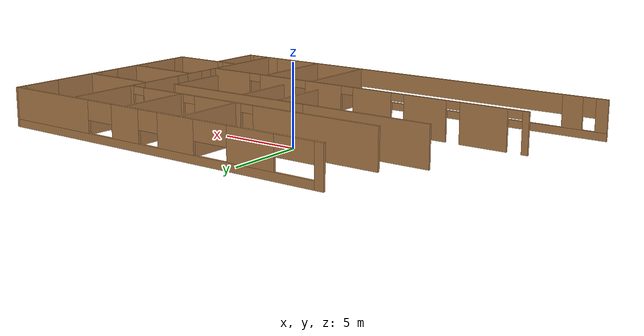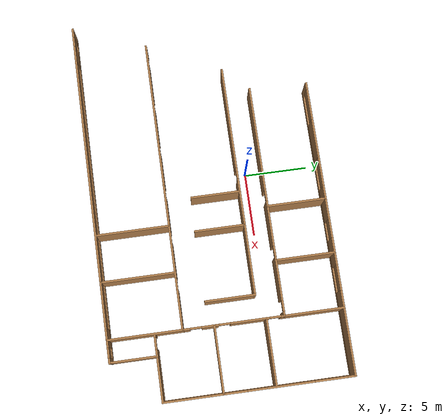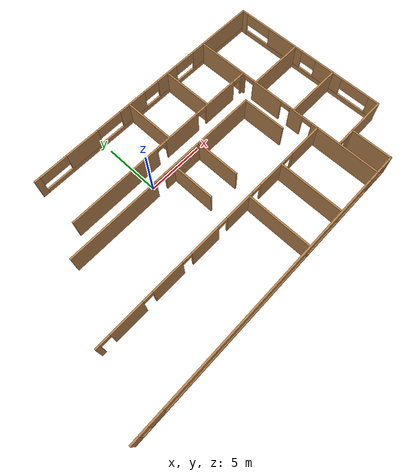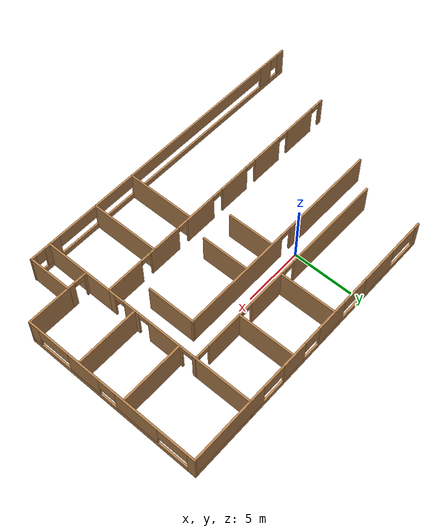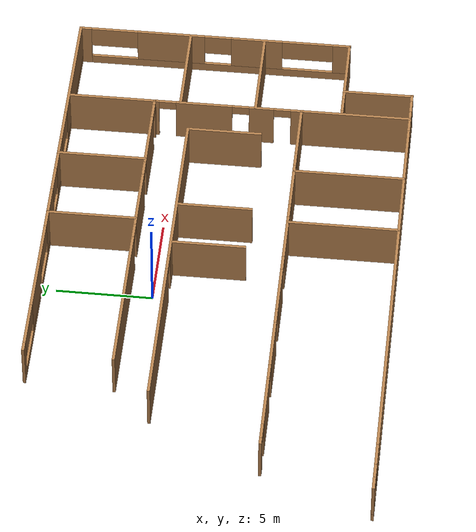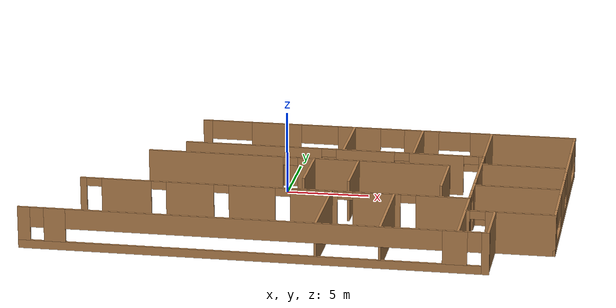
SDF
<sdf version="1.5">
 <model name="Office">
  <link name="Wall_19">
   <pose>2.70021 1.20875 0 0 -0 0</pose>
   <visual name="Wall_19_Visual_0">
    <pose>-5.01824 0 1.25 0 -0 0</pose>
    <geometry><box><size>8.46352 0.15 2.5</size></box></geometry>
    <material>
     <script><uri>file://media/materials/scripts/gazebo.material</uri><name>Gazebo/Wood</name></script>
     <ambient>1 1 1 1</ambient>
    </material>
   </visual>
   <collision name="Wall_19_Collision_0">
    <geometry><box><size>8.46352 0.15 2.5</size></box></geometry>
    <pose>-5.01824 0 1.25 0 -0 0</pose>
   </collision>
   <visual name="Wall_19_Visual_1">
    <pose>1.91202 0 1.25 0 -0 0</pose>
    <geometry><box><size>3.59698 0.15 2.5</size></box></geometry>
    <material>
     <script><uri>file://media/materials/scripts/gazebo.material</uri><name>Gazebo/Wood</name></script>
     <ambient>1 1 1 1</ambient>
    </material>
   </visual>
   <collision name="Wall_19_Collision_1">
    <geometry><box><size>3.59698 0.15 2.5</size></box></geometry>
    <pose>1.91202 0 1.25 0 -0 0</pose>
   </collision>
   <visual name="Wall_19_Visual_2">
    <pose>6.28533 0 1.25 0 -0 0</pose>
    <geometry><box><size>3.34965 0.15 2.5</size></box></geometry>
    <material>
     <script><uri>file://media/materials/scripts/gazebo.material</uri><name>Gazebo/Wood</name></script>
     <ambient>1 1 1 1</ambient>
    </material>
   </visual>
   <collision name="Wall_19_Collision_2">
    <geometry><box><size>3.34965 0.15 2.5</size></box></geometry>
    <pose>6.28533 0 1.25 0 -0 0</pose>
   </collision>
   <visual name="Wall_19_Visual_3">
    <pose>9.05508 0 1.25 0 -0 0</pose>
    <geometry><box><size>0.389848 0.15 2.5</size></box></geometry>
    <material>
     <script><uri>file://media/materials/scripts/gazebo.material</uri><name>Gazebo/Wood</name></script>
     <ambient>1 1 1 1</ambient>
    </material>
   </visual>
   <collision name="Wall_19_Collision_3">
    <geometry><box><size>0.389848 0.15 2.5</size></box></geometry>
    <pose>9.05508 0 1.25 0 -0 0</pose>
   </collision>
   <visual name="Wall_19_Visual_4">
    <pose>-0.336476 0 2.25 0 -0 0</pose>
    <geometry><box><size>0.9 0.15 0.5</size></box></geometry>
    <material>
     <script><uri>file://media/materials/scripts/gazebo.material</uri><name>Gazebo/Wood</name></script>
     <ambient>1 1 1 1</ambient>
    </material>
   </visual>
   <collision name="Wall_19_Collision_4">
    <geometry><box><size>0.9 0.15 0.5</size></box></geometry>
    <pose>-0.336476 0 2.25 0 -0 0</pose>
   </collision>
   <visual name="Wall_19_Visual_5">
    <pose>4.1605 0 2.25 0 -0 0</pose>
    <geometry><box><size>0.9 0.15 0.5</size></box></geometry>
    <material>
     <script><uri>file://media/materials/scripts/gazebo.material</uri><name>Gazebo/Wood</name></script>
     <ambient>1 1 1 1</ambient>
    </material>
   </visual>
   <collision name="Wall_19_Collision_5">
    <geometry><box><size>0.9 0.15 0.5</size></box></geometry>
    <pose>4.1605 0 2.25 0 -0 0</pose>
   </collision>
   <visual name="Wall_19_Visual_6">
    <pose>8.41015 0 2.25 0 -0 0</pose>
    <geometry><box><size>0.9 0.15 0.5</size></box></geometry>
    <material>
     <script><uri>file://media/materials/scripts/gazebo.material</uri><name>Gazebo/Wood</name></script>
     <ambient>1 1 1 1</ambient>
    </material>
   </visual>
   <collision name="Wall_19_Collision_6">
    <geometry><box><size>0.9 0.15 0.5</size></box></geometry>
    <pose>8.41015 0 2.25 0 -0 0</pose>
   </collision>
  </link>
  <link name="Wall_2">
   <pose>5.35021 5.80875 0 0 -0 0</pose>
   <visual name="Wall_2_Visual_0">
    <pose>-11.4699 0 1.25 0 -0 0</pose>
    <geometry><box><size>0.560252 0.15 2.5</size></box></geometry>
    <material>
     <script><uri>file://media/materials/scripts/gazebo.material</uri><name>Gazebo/Wood</name></script>
     <ambient>1 1 1 1</ambient>
    </material>
   </visual>
   <collision name="Wall_2_Collision_0">
    <geometry><box><size>0.560252 0.15 2.5</size></box></geometry>
    <pose>-11.4699 0 1.25 0 -0 0</pose>
   </collision>
   <visual name="Wall_2_Visual_1">
    <pose>0.280126 0 0.25 0 -0 0</pose>
    <geometry><box><size>22.9397 0.15 0.5</size></box></geometry>
    <material>
     <script><uri>file://media/materials/scripts/gazebo.material</uri><name>Gazebo/Wood</name></script>
     <ambient>1 1 1 1</ambient>
    </material>
   </visual>
   <collision name="Wall_2_Collision_1">
    <geometry><box><size>22.9397 0.15 0.5</size></box></geometry>
    <pose>0.280126 0 0.25 0 -0 0</pose>
   </collision>
   <visual name="Wall_2_Visual_2">
    <pose>-7.05725 0 1.5 0 -0 0</pose>
    <geometry><box><size>3.15734 0.15 2</size></box></geometry>
    <material>
     <script><uri>file://media/materials/scripts/gazebo.material</uri><name>Gazebo/Wood</name></script>
     <ambient>1 1 1 1</ambient>
    </material>
   </visual>
   <collision name="Wall_2_Collision_2">
    <geometry><box><size>3.15734 0.15 2</size></box></geometry>
    <pose>-7.05725 0 1.5 0 -0 0</pose>
   </collision>
   <visual name="Wall_2_Visual_3">
    <pose>-1.78454 0 1.5 0 -0 0</pose>
    <geometry><box><size>2.68516 0.15 2</size></box></geometry>
    <material>
     <script><uri>file://media/materials/scripts/gazebo.material</uri><name>Gazebo/Wood</name></script>
     <ambient>1 1 1 1</ambient>
    </material>
   </visual>
   <collision name="Wall_2_Collision_3">
    <geometry><box><size>2.68516 0.15 2</size></box></geometry>
    <pose>-1.78454 0 1.5 0 -0 0</pose>
   </collision>
   <visual name="Wall_2_Visual_4">
    <pose>2.13907 0 1.5 0 -0 0</pose>
    <geometry><box><size>2.16801 0.15 2</size></box></geometry>
    <material>
     <script><uri>file://media/materials/scripts/gazebo.material</uri><name>Gazebo/Wood</name></script>
     <ambient>1 1 1 1</ambient>
    </material>
   </visual>
   <collision name="Wall_2_Collision_4">
    <geometry><box><size>2.16801 0.15 2</size></box></geometry>
    <pose>2.13907 0 1.5 0 -0 0</pose>
   </collision>
   <visual name="Wall_2_Visual_5">
    <pose>8.47114 0 1.5 0 -0 0</pose>
    <geometry><box><size>6.55771 0.15 2</size></box></geometry>
    <material>
     <script><uri>file://media/materials/scripts/gazebo.material</uri><name>Gazebo/Wood</name></script>
     <ambient>1 1 1 1</ambient>
    </material>
   </visual>
   <collision name="Wall_2_Collision_5">
    <geometry><box><size>6.55771 0.15 2</size></box></geometry>
    <pose>8.47114 0 1.5 0 -0 0</pose>
   </collision>
   <visual name="Wall_2_Visual_6">
    <pose>-9.91284 0 1.9 0 -0 0</pose>
    <geometry><box><size>2.55382 0.15 1.2</size></box></geometry>
    <material>
     <script><uri>file://media/materials/scripts/gazebo.material</uri><name>Gazebo/Wood</name></script>
     <ambient>1 1 1 1</ambient>
    </material>
   </visual>
   <collision name="Wall_2_Collision_6">
    <geometry><box><size>2.55382 0.15 1.2</size></box></geometry>
    <pose>-9.91284 0 1.9 0 -0 0</pose>
   </collision>
   <visual name="Wall_2_Visual_7">
    <pose>-4.30285 0 1.9 0 -0 0</pose>
    <geometry><box><size>2.35146 0.15 1.2</size></box></geometry>
    <material>
     <script><uri>file://media/materials/scripts/gazebo.material</uri><name>Gazebo/Wood</name></script>
     <ambient>1 1 1 1</ambient>
    </material>
   </visual>
   <collision name="Wall_2_Collision_7">
    <geometry><box><size>2.35146 0.15 1.2</size></box></geometry>
    <pose>-4.30285 0 1.9 0 -0 0</pose>
   </collision>
   <visual name="Wall_2_Visual_8">
    <pose>0.306552 0 1.9 0 -0 0</pose>
    <geometry><box><size>1.49703 0.15 1.2</size></box></geometry>
    <material>
     <script><uri>file://media/materials/scripts/gazebo.material</uri><name>Gazebo/Wood</name></script>
     <ambient>1 1 1 1</ambient>
    </material>
   </visual>
   <collision name="Wall_2_Collision_8">
    <geometry><box><size>1.49703 0.15 1.2</size></box></geometry>
    <pose>0.306552 0 1.9 0 -0 0</pose>
   </collision>
   <visual name="Wall_2_Visual_9">
    <pose>4.20768 0 1.9 0 -0 0</pose>
    <geometry><box><size>1.96921 0.15 1.2</size></box></geometry>
    <material>
     <script><uri>file://media/materials/scripts/gazebo.material</uri><name>Gazebo/Wood</name></script>
     <ambient>1 1 1 1</ambient>
    </material>
   </visual>
   <collision name="Wall_2_Collision_9">
    <geometry><box><size>1.96921 0.15 1.2</size></box></geometry>
    <pose>4.20768 0 1.9 0 -0 0</pose>
   </collision>
  </link>
  <link name="Wall_20">
   <pose>11.8765 -2.716 0 0 0 -1.57047</pose>
   <visual name="Wall_20_Visual_0">
    <pose>-3.83753 0 1.25 0 -0 0</pose>
    <geometry><box><size>0.324938 0.15 2.5</size></box></geometry>
    <material>
     <script><uri>file://media/materials/scripts/gazebo.material</uri><name>Gazebo/Wood</name></script>
     <ambient>1 1 1 1</ambient>
    </material>
   </visual>
   <collision name="Wall_20_Collision_0">
    <geometry><box><size>0.324938 0.15 2.5</size></box></geometry>
    <pose>-3.83753 0 1.25 0 -0 0</pose>
   </collision>
   <visual name="Wall_20_Visual_1">
    <pose>-1.26988 0 1.25 0 -0 0</pose>
    <geometry><box><size>3.01037 0.15 2.5</size></box></geometry>
    <material>
     <script><uri>file://media/materials/scripts/gazebo.material</uri><name>Gazebo/Wood</name></script>
     <ambient>1 1 1 1</ambient>
    </material>
   </visual>
   <collision name="Wall_20_Collision_1">
    <geometry><box><size>3.01037 0.15 2.5</size></box></geometry>
    <pose>-1.26988 0 1.25 0 -0 0</pose>
   </collision>
   <visual name="Wall_20_Visual_2">
    <pose>1.79718 0 1.25 0 -0 0</pose>
    <geometry><box><size>1.32373 0.15 2.5</size></box></geometry>
    <material>
     <script><uri>file://media/materials/scripts/gazebo.material</uri><name>Gazebo/Wood</name></script>
     <ambient>1 1 1 1</ambient>
    </material>
   </visual>
   <collision name="Wall_20_Collision_2">
    <geometry><box><size>1.32373 0.15 2.5</size></box></geometry>
    <pose>1.79718 0 1.25 0 -0 0</pose>
   </collision>
   <visual name="Wall_20_Visual_3">
    <pose>3.67952 0 1.25 0 -0 0</pose>
    <geometry><box><size>0.640957 0.15 2.5</size></box></geometry>
    <material>
     <script><uri>file://media/materials/scripts/gazebo.material</uri><name>Gazebo/Wood</name></script>
     <ambient>1 1 1 1</ambient>
    </material>
   </visual>
   <collision name="Wall_20_Collision_3">
    <geometry><box><size>0.640957 0.15 2.5</size></box></geometry>
    <pose>3.67952 0 1.25 0 -0 0</pose>
   </collision>
   <visual name="Wall_20_Visual_4">
    <pose>-3.22506 0 2.25 0 -0 0</pose>
    <geometry><box><size>0.9 0.15 0.5</size></box></geometry>
    <material>
     <script><uri>file://media/materials/scripts/gazebo.material</uri><name>Gazebo/Wood</name></script>
     <ambient>1 1 1 1</ambient>
    </material>
   </visual>
   <collision name="Wall_20_Collision_4">
    <geometry><box><size>0.9 0.15 0.5</size></box></geometry>
    <pose>-3.22506 0 2.25 0 -0 0</pose>
   </collision>
   <visual name="Wall_20_Visual_5">
    <pose>0.685311 0 2.25 0 -0 0</pose>
    <geometry><box><size>0.9 0.15 0.5</size></box></geometry>
    <material>
     <script><uri>file://media/materials/scripts/gazebo.material</uri><name>Gazebo/Wood</name></script>
     <ambient>1 1 1 1</ambient>
    </material>
   </visual>
   <collision name="Wall_20_Collision_5">
    <geometry><box><size>0.9 0.15 0.5</size></box></geometry>
    <pose>0.685311 0 2.25 0 -0 0</pose>
   </collision>
   <visual name="Wall_20_Visual_6">
    <pose>2.90904 0 2.25 0 -0 0</pose>
    <geometry><box><size>0.9 0.15 0.5</size></box></geometry>
    <material>
     <script><uri>file://media/materials/scripts/gazebo.material</uri><name>Gazebo/Wood</name></script>
     <ambient>1 1 1 1</ambient>
    </material>
   </visual>
   <collision name="Wall_20_Collision_6">
    <geometry><box><size>0.9 0.15 0.5</size></box></geometry>
    <pose>2.90904 0 2.25 0 -0 0</pose>
   </collision>
  </link>
  <link name="Wall_21">
   <pose>0.327792 -6.64075 0 0 -0 3.14159</pose>
   <visual name="Wall_21_Visual_0">
    <pose>-10.0278 0 1.25 0 -0 0</pose>
    <geometry><box><size>3.19439 0.15 2.5</size></box></geometry>
    <material>
     <script><uri>file://media/materials/scripts/gazebo.material</uri><name>Gazebo/Wood</name></script>
     <ambient>1 1 1 1</ambient>
    </material>
   </visual>
   <collision name="Wall_21_Collision_0">
    <geometry><box><size>3.19439 0.15 2.5</size></box></geometry>
    <pose>-10.0278 0 1.25 0 -0 0</pose>
   </collision>
   <visual name="Wall_21_Visual_1">
    <pose>-6.12294 0 1.25 0 -0 0</pose>
    <geometry><box><size>2.81533 0.15 2.5</size></box></geometry>
    <material>
     <script><uri>file://media/materials/scripts/gazebo.material</uri><name>Gazebo/Wood</name></script>
     <ambient>1 1 1 1</ambient>
    </material>
   </visual>
   <collision name="Wall_21_Collision_1">
    <geometry><box><size>2.81533 0.15 2.5</size></box></geometry>
    <pose>-6.12294 0 1.25 0 -0 0</pose>
   </collision>
   <visual name="Wall_21_Visual_2">
    <pose>-2.41333 0 1.25 0 -0 0</pose>
    <geometry><box><size>2.80389 0.15 2.5</size></box></geometry>
    <material>
     <script><uri>file://media/materials/scripts/gazebo.material</uri><name>Gazebo/Wood</name></script>
     <ambient>1 1 1 1</ambient>
    </material>
   </visual>
   <collision name="Wall_21_Collision_2">
    <geometry><box><size>2.80389 0.15 2.5</size></box></geometry>
    <pose>-2.41333 0 1.25 0 -0 0</pose>
   </collision>
   <visual name="Wall_21_Visual_3">
    <pose>1.27186 0 1.25 0 -0 0</pose>
    <geometry><box><size>2.76648 0.15 2.5</size></box></geometry>
    <material>
     <script><uri>file://media/materials/scripts/gazebo.material</uri><name>Gazebo/Wood</name></script>
     <ambient>1 1 1 1</ambient>
    </material>
   </visual>
   <collision name="Wall_21_Collision_3">
    <geometry><box><size>2.76648 0.15 2.5</size></box></geometry>
    <pose>1.27186 0 1.25 0 -0 0</pose>
   </collision>
   <visual name="Wall_21_Visual_4">
    <pose>4.99008 0 1.25 0 -0 0</pose>
    <geometry><box><size>2.86997 0.15 2.5</size></box></geometry>
    <material>
     <script><uri>file://media/materials/scripts/gazebo.material</uri><name>Gazebo/Wood</name></script>
     <ambient>1 1 1 1</ambient>
    </material>
   </visual>
   <collision name="Wall_21_Collision_4">
    <geometry><box><size>2.86997 0.15 2.5</size></box></geometry>
    <pose>4.99008 0 1.25 0 -0 0</pose>
   </collision>
   <visual name="Wall_21_Visual_5">
    <pose>8.82658 0 1.25 0 -0 0</pose>
    <geometry><box><size>3.00303 0.15 2.5</size></box></geometry>
    <material>
     <script><uri>file://media/materials/scripts/gazebo.material</uri><name>Gazebo/Wood</name></script>
     <ambient>1 1 1 1</ambient>
    </material>
   </visual>
   <collision name="Wall_21_Collision_5">
    <geometry><box><size>3.00303 0.15 2.5</size></box></geometry>
    <pose>8.82658 0 1.25 0 -0 0</pose>
   </collision>
   <visual name="Wall_21_Visual_6">
    <pose>11.4265 0 1.25 0 -0 0</pose>
    <geometry><box><size>0.396909 0.15 2.5</size></box></geometry>
    <material>
     <script><uri>file://media/materials/scripts/gazebo.material</uri><name>Gazebo/Wood</name></script>
     <ambient>1 1 1 1</ambient>
    </material>
   </visual>
   <collision name="Wall_21_Collision_6">
    <geometry><box><size>0.396909 0.15 2.5</size></box></geometry>
    <pose>11.4265 0 1.25 0 -0 0</pose>
   </collision>
   <visual name="Wall_21_Visual_7">
    <pose>-7.98061 0 2.25 0 -0 0</pose>
    <geometry><box><size>0.9 0.15 0.5</size></box></geometry>
    <material>
     <script><uri>file://media/materials/scripts/gazebo.material</uri><name>Gazebo/Wood</name></script>
     <ambient>1 1 1 1</ambient>
    </material>
   </visual>
   <collision name="Wall_21_Collision_7">
    <geometry><box><size>0.9 0.15 0.5</size></box></geometry>
    <pose>-7.98061 0 2.25 0 -0 0</pose>
   </collision>
   <visual name="Wall_21_Visual_8">
    <pose>-4.26528 0 2.25 0 -0 0</pose>
    <geometry><box><size>0.9 0.15 0.5</size></box></geometry>
    <material>
     <script><uri>file://media/materials/scripts/gazebo.material</uri><name>Gazebo/Wood</name></script>
     <ambient>1 1 1 1</ambient>
    </material>
   </visual>
   <collision name="Wall_21_Collision_8">
    <geometry><box><size>0.9 0.15 0.5</size></box></geometry>
    <pose>-4.26528 0 2.25 0 -0 0</pose>
   </collision>
   <visual name="Wall_21_Visual_9">
    <pose>-0.561382 0 2.25 0 -0 0</pose>
    <geometry><box><size>0.9 0.15 0.5</size></box></geometry>
    <material>
     <script><uri>file://media/materials/scripts/gazebo.material</uri><name>Gazebo/Wood</name></script>
     <ambient>1 1 1 1</ambient>
    </material>
   </visual>
   <collision name="Wall_21_Collision_9">
    <geometry><box><size>0.9 0.15 0.5</size></box></geometry>
    <pose>-0.561382 0 2.25 0 -0 0</pose>
   </collision>
   <visual name="Wall_21_Visual_10">
    <pose>3.1051 0 2.25 0 -0 0</pose>
    <geometry><box><size>0.9 0.15 0.5</size></box></geometry>
    <material>
     <script><uri>file://media/materials/scripts/gazebo.material</uri><name>Gazebo/Wood</name></script>
     <ambient>1 1 1 1</ambient>
    </material>
   </visual>
   <collision name="Wall_21_Collision_10">
    <geometry><box><size>0.9 0.15 0.5</size></box></geometry>
    <pose>3.1051 0 2.25 0 -0 0</pose>
   </collision>
   <visual name="Wall_21_Visual_11">
    <pose>6.87507 0 2.25 0 -0 0</pose>
    <geometry><box><size>0.9 0.15 0.5</size></box></geometry>
    <material>
     <script><uri>file://media/materials/scripts/gazebo.material</uri><name>Gazebo/Wood</name></script>
     <ambient>1 1 1 1</ambient>
    </material>
   </visual>
   <collision name="Wall_21_Collision_11">
    <geometry><box><size>0.9 0.15 0.5</size></box></geometry>
    <pose>6.87507 0 2.25 0 -0 0</pose>
   </collision>
   <visual name="Wall_21_Visual_12">
    <pose>10.7781 0 2.25 0 -0 0</pose>
    <geometry><box><size>0.9 0.15 0.5</size></box></geometry>
    <material>
     <script><uri>file://media/materials/scripts/gazebo.material</uri><name>Gazebo/Wood</name></script>
     <ambient>1 1 1 1</ambient>
    </material>
   </visual>
   <collision name="Wall_21_Collision_12">
    <geometry><box><size>0.9 0.15 0.5</size></box></geometry>
    <pose>10.7781 0 2.25 0 -0 0</pose>
   </collision>
  </link>
  <link name="Wall_26">
   <collision name="Wall_26_Collision">
    <geometry><box><size>3.75 0.15 2.5</size></box></geometry>
    <pose>0 0 1.25 0 -0 0</pose>
   </collision>
   <visual name="Wall_26_Visual">
    <pose>0 0 1.25 0 -0 0</pose>
    <geometry><box><size>3.75 0.15 2.5</size></box></geometry>
    <material>
     <script><uri>file://media/materials/scripts/gazebo.material</uri><name>Gazebo/Wood</name></script>
     <ambient>1 1 1 1</ambient>
    </material>
   </visual>
   <pose>13.5782 -10.5913 0 0 0 -1.5708</pose>
  </link>
  <link name="Wall_3">
   <pose>17.0252 -1.49125 0 0 0 -1.5708</pose>
   <visual name="Wall_3_Visual_0">
    <pose>-7.0458 0 1.25 0 -0 0</pose>
    <geometry><box><size>0.658408 0.15 2.5</size></box></geometry>
    <material>
     <script><uri>file://media/materials/scripts/gazebo.material</uri><name>Gazebo/Wood</name></script>
     <ambient>1 1 1 1</ambient>
    </material>
   </visual>
   <collision name="Wall_3_Collision_0">
    <geometry><box><size>0.658408 0.15 2.5</size></box></geometry>
    <pose>-7.0458 0 1.25 0 -0 0</pose>
   </collision>
   <visual name="Wall_3_Visual_1">
    <pose>0.329204 0 0.25 0 -0 0</pose>
    <geometry><box><size>14.0916 0.15 0.5</size></box></geometry>
    <material>
     <script><uri>file://media/materials/scripts/gazebo.material</uri><name>Gazebo/Wood</name></script>
     <ambient>1 1 1 1</ambient>
    </material>
   </visual>
   <collision name="Wall_3_Collision_1">
    <geometry><box><size>14.0916 0.15 0.5</size></box></geometry>
    <pose>0.329204 0 0.25 0 -0 0</pose>
   </collision>
   <visual name="Wall_3_Visual_2">
    <pose>-2.38173 0 1.5 0 -0 0</pose>
    <geometry><box><size>3.65201 0.15 2</size></box></geometry>
    <material>
     <script><uri>file://media/materials/scripts/gazebo.material</uri><name>Gazebo/Wood</name></script>
     <ambient>1 1 1 1</ambient>
    </material>
   </visual>
   <collision name="Wall_3_Collision_2">
    <geometry><box><size>3.65201 0.15 2</size></box></geometry>
    <pose>-2.38173 0 1.5 0 -0 0</pose>
   </collision>
   <visual name="Wall_3_Visual_3">
    <pose>2.2833 0 1.5 0 -0 0</pose>
    <geometry><box><size>2.77394 0.15 2</size></box></geometry>
    <material>
     <script><uri>file://media/materials/scripts/gazebo.material</uri><name>Gazebo/Wood</name></script>
     <ambient>1 1 1 1</ambient>
    </material>
   </visual>
   <collision name="Wall_3_Collision_3">
    <geometry><box><size>2.77394 0.15 2</size></box></geometry>
    <pose>2.2833 0 1.5 0 -0 0</pose>
   </collision>
   <visual name="Wall_3_Visual_4">
    <pose>6.89046 0 1.5 0 -0 0</pose>
    <geometry><box><size>0.969072 0.15 2</size></box></geometry>
    <material>
     <script><uri>file://media/materials/scripts/gazebo.material</uri><name>Gazebo/Wood</name></script>
     <ambient>1 1 1 1</ambient>
    </material>
   </visual>
   <collision name="Wall_3_Collision_4">
    <geometry><box><size>0.969072 0.15 2</size></box></geometry>
    <pose>6.89046 0 1.5 0 -0 0</pose>
   </collision>
   <visual name="Wall_3_Visual_5">
    <pose>-5.46217 0 1.9 0 -0 0</pose>
    <geometry><box><size>2.50885 0.15 1.2</size></box></geometry>
    <material>
     <script><uri>file://media/materials/scripts/gazebo.material</uri><name>Gazebo/Wood</name></script>
     <ambient>1 1 1 1</ambient>
    </material>
   </visual>
   <collision name="Wall_3_Collision_5">
    <geometry><box><size>2.50885 0.15 1.2</size></box></geometry>
    <pose>-5.46217 0 1.9 0 -0 0</pose>
   </collision>
   <visual name="Wall_3_Visual_6">
    <pose>0.170302 0 1.9 0 -0 0</pose>
    <geometry><box><size>1.45206 0.15 1.2</size></box></geometry>
    <material>
     <script><uri>file://media/materials/scripts/gazebo.material</uri><name>Gazebo/Wood</name></script>
     <ambient>1 1 1 1</ambient>
    </material>
   </visual>
   <collision name="Wall_3_Collision_6">
    <geometry><box><size>1.45206 0.15 1.2</size></box></geometry>
    <pose>0.170302 0 1.9 0 -0 0</pose>
   </collision>
   <visual name="Wall_3_Visual_7">
    <pose>5.0381 0 1.9 0 -0 0</pose>
    <geometry><box><size>2.73566 0.15 1.2</size></box></geometry>
    <material>
     <script><uri>file://media/materials/scripts/gazebo.material</uri><name>Gazebo/Wood</name></script>
     <ambient>1 1 1 1</ambient>
    </material>
   </visual>
   <collision name="Wall_3_Collision_7">
    <geometry><box><size>2.73566 0.15 1.2</size></box></geometry>
    <pose>5.0381 0 1.9 0 -0 0</pose>
   </collision>
  </link>
  <link name="Wall_4">
   <collision name="Wall_4_Collision">
    <geometry><box><size>3.59696 0.15 2.5</size></box></geometry>
    <pose>0 0 1.25 0 -0 0</pose>
   </collision>
   <visual name="Wall_4_Visual">
    <pose>0 0 1.25 0 -0 0</pose>
    <geometry><box><size>3.59696 0.15 2.5</size></box></geometry>
    <material>
     <script><uri>file://media/materials/scripts/gazebo.material</uri><name>Gazebo/Wood</name></script>
     <ambient>1 1 1 1</ambient>
    </material>
   </visual>
   <pose>15.3017 -8.79125 0 0 -0 3.14159</pose>
  </link>
  <link name="Wall_42">
   <collision name="Wall_42_Collision">
    <geometry><box><size>5.8 0.15 2.5</size></box></geometry>
    <pose>0 0 1.25 0 -0 0</pose>
   </collision>
   <visual name="Wall_42_Visual">
    <pose>0 0 1.25 0 -0 0</pose>
    <geometry><box><size>5.8 0.15 2.5</size></box></geometry>
    <material>
     <script><uri>file://media/materials/scripts/gazebo.material</uri><name>Gazebo/Wood</name></script>
     <ambient>1 1 1 1</ambient>
    </material>
   </visual>
   <pose>3.77279 -9.54675 0 0 0 -1.5708</pose>
  </link>
  <link name="Wall_44">
   <collision name="Wall_44_Collision">
    <geometry><box><size>5.855 0.15 2.5</size></box></geometry>
    <pose>0 0 1.25 0 -0 0</pose>
   </collision>
   <visual name="Wall_44_Visual">
    <pose>0 0 1.25 0 -0 0</pose>
    <geometry><box><size>5.855 0.15 2.5</size></box></geometry>
    <material>
     <script><uri>file://media/materials/scripts/gazebo.material</uri><name>Gazebo/Wood</name></script>
     <ambient>1 1 1 1</ambient>
    </material>
   </visual>
   <pose>7.45979 -9.51925 0 0 0 -1.5708</pose>
  </link>
  <link name="Wall_47">
   <collision name="Wall_47_Collision">
    <geometry><box><size>5.881 0.15 2.5</size></box></geometry>
    <pose>0 0 1.25 0 -0 0</pose>
   </collision>
   <visual name="Wall_47_Visual">
    <pose>0 0 1.25 0 -0 0</pose>
    <geometry><box><size>5.881 0.15 2.5</size></box></geometry>
    <material>
     <script><uri>file://media/materials/scripts/gazebo.material</uri><name>Gazebo/Wood</name></script>
     <ambient>1 1 1 1</ambient>
    </material>
   </visual>
   <pose>11.8778 -9.50625 0 0 0 -1.5708</pose>
  </link>
  <link name="Wall_49">
   <pose>12.7782 -8.79125 0 0 -0 3.14159</pose>
   <visual name="Wall_49_Visual_0">
    <pose>-0.566515 0 1.25 0 -0 0</pose>
    <geometry><box><size>0.61697 0.15 2.5</size></box></geometry>
    <material>
     <script><uri>file://media/materials/scripts/gazebo.material</uri><name>Gazebo/Wood</name></script>
     <ambient>1 1 1 1</ambient>
    </material>
   </visual>
   <collision name="Wall_49_Collision_0">
    <geometry><box><size>0.61697 0.15 2.5</size></box></geometry>
    <pose>-0.566515 0 1.25 0 -0 0</pose>
   </collision>
   <visual name="Wall_49_Visual_1">
    <pose>0.758485 0 1.25 0 -0 0</pose>
    <geometry><box><size>0.23303 0.15 2.5</size></box></geometry>
    <material>
     <script><uri>file://media/materials/scripts/gazebo.material</uri><name>Gazebo/Wood</name></script>
     <ambient>1 1 1 1</ambient>
    </material>
   </visual>
   <collision name="Wall_49_Collision_1">
    <geometry><box><size>0.23303 0.15 2.5</size></box></geometry>
    <pose>0.758485 0 1.25 0 -0 0</pose>
   </collision>
   <visual name="Wall_49_Visual_2">
    <pose>0.19197 0 2.25 0 -0 0</pose>
    <geometry><box><size>0.9 0.15 0.5</size></box></geometry>
    <material>
     <script><uri>file://media/materials/scripts/gazebo.material</uri><name>Gazebo/Wood</name></script>
     <ambient>1 1 1 1</ambient>
    </material>
   </visual>
   <collision name="Wall_49_Collision_2">
    <geometry><box><size>0.9 0.15 0.5</size></box></geometry>
    <pose>0.19197 0 2.25 0 -0 0</pose>
   </collision>
  </link>
  <link name="Wall_6">
   <pose>0.054792 -12.4088 0 0 -0 3.14159</pose>
   <visual name="Wall_6_Visual_0">
    <pose>-13.398 0 1.25 0 -0 0</pose>
    <geometry><box><size>0.453995 0.15 2.5</size></box></geometry>
    <material>
     <script><uri>file://media/materials/scripts/gazebo.material</uri><name>Gazebo/Wood</name></script>
     <ambient>1 1 1 1</ambient>
    </material>
   </visual>
   <collision name="Wall_6_Collision_0">
    <geometry><box><size>0.453995 0.15 2.5</size></box></geometry>
    <pose>-13.398 0 1.25 0 -0 0</pose>
   </collision>
   <visual name="Wall_6_Visual_1">
    <pose>0.226997 0 0.25 0 -0 0</pose>
    <geometry><box><size>26.796 0.15 0.5</size></box></geometry>
    <material>
     <script><uri>file://media/materials/scripts/gazebo.material</uri><name>Gazebo/Wood</name></script>
     <ambient>1 1 1 1</ambient>
    </material>
   </visual>
   <collision name="Wall_6_Collision_1">
    <geometry><box><size>26.796 0.15 0.5</size></box></geometry>
    <pose>0.226997 0 0.25 0 -0 0</pose>
   </collision>
   <visual name="Wall_6_Visual_2">
    <pose>-11.6639 0 1.5 0 -0 0</pose>
    <geometry><box><size>1.41428 0.15 2</size></box></geometry>
    <material>
     <script><uri>file://media/materials/scripts/gazebo.material</uri><name>Gazebo/Wood</name></script>
     <ambient>1 1 1 1</ambient>
    </material>
   </visual>
   <collision name="Wall_6_Collision_2">
    <geometry><box><size>1.41428 0.15 2</size></box></geometry>
    <pose>-11.6639 0 1.5 0 -0 0</pose>
   </collision>
   <visual name="Wall_6_Visual_3">
    <pose>11.4432 0 1.5 0 -0 0</pose>
    <geometry><box><size>1.27929 0.15 2</size></box></geometry>
    <material>
     <script><uri>file://media/materials/scripts/gazebo.material</uri><name>Gazebo/Wood</name></script>
     <ambient>1 1 1 1</ambient>
    </material>
   </visual>
   <collision name="Wall_6_Collision_3">
    <geometry><box><size>1.27929 0.15 2</size></box></geometry>
    <pose>11.4432 0 1.5 0 -0 0</pose>
   </collision>
   <visual name="Wall_6_Visual_4">
    <pose>13.2539 0 1.5 0 -0 0</pose>
    <geometry><box><size>0.742142 0.15 2</size></box></geometry>
    <material>
     <script><uri>file://media/materials/scripts/gazebo.material</uri><name>Gazebo/Wood</name></script>
     <ambient>1 1 1 1</ambient>
    </material>
   </visual>
   <collision name="Wall_6_Collision_4">
    <geometry><box><size>0.742142 0.15 2</size></box></geometry>
    <pose>13.2539 0 1.5 0 -0 0</pose>
   </collision>
   <visual name="Wall_6_Visual_5">
    <pose>-12.771 0 1.9 0 -0 0</pose>
    <geometry><box><size>0.8 0.15 1.2</size></box></geometry>
    <material>
     <script><uri>file://media/materials/scripts/gazebo.material</uri><name>Gazebo/Wood</name></script>
     <ambient>1 1 1 1</ambient>
    </material>
   </visual>
   <collision name="Wall_6_Collision_5">
    <geometry><box><size>0.8 0.15 1.2</size></box></geometry>
    <pose>-12.771 0 1.9 0 -0 0</pose>
   </collision>
   <visual name="Wall_6_Visual_6">
    <pose>-0.076576 0 1.9 0 -0 0</pose>
    <geometry><box><size>21.7603 0.15 1.2</size></box></geometry>
    <material>
     <script><uri>file://media/materials/scripts/gazebo.material</uri><name>Gazebo/Wood</name></script>
     <ambient>1 1 1 1</ambient>
    </material>
   </visual>
   <collision name="Wall_6_Collision_6">
    <geometry><box><size>21.7603 0.15 1.2</size></box></geometry>
    <pose>-0.076576 0 1.9 0 -0 0</pose>
   </collision>
   <visual name="Wall_6_Visual_7">
    <pose>12.4829 0 1.9 0 -0 0</pose>
    <geometry><box><size>0.8 0.15 1.2</size></box></geometry>
    <material>
     <script><uri>file://media/materials/scripts/gazebo.material</uri><name>Gazebo/Wood</name></script>
     <ambient>1 1 1 1</ambient>
    </material>
   </visual>
   <collision name="Wall_6_Collision_7">
    <geometry><box><size>0.8 0.15 1.2</size></box></geometry>
    <pose>12.4829 0 1.9 0 -0 0</pose>
   </collision>
  </link>
  <link name="Wall_62">
   <collision name="Wall_62_Collision">
    <geometry><box><size>4 0.15 2.5</size></box></geometry>
    <pose>0 0 1.25 0 -0 0</pose>
   </collision>
   <visual name="Wall_62_Visual">
    <pose>0 0 1.25 0 -0 0</pose>
    <geometry><box><size>4 0.15 2.5</size></box></geometry>
    <material>
     <script><uri>file://media/materials/scripts/gazebo.material</uri><name>Gazebo/Wood</name></script>
     <ambient>1 1 1 1</ambient>
    </material>
   </visual>
   <pose>9.97996 -2.70262 0 0 -0 1.5708</pose>
  </link>
  <link name="Wall_63">
   <pose>0.804961 -0.777624 0 0 -0 3.14159</pose>
   <visual name="Wall_63_Visual_0">
    <pose>-4.6124 0 1.25 0 -0 0</pose>
    <geometry><box><size>9.2752 0.15 2.5</size></box></geometry>
    <material>
     <script><uri>file://media/materials/scripts/gazebo.material</uri><name>Gazebo/Wood</name></script>
     <ambient>1 1 1 1</ambient>
    </material>
   </visual>
   <collision name="Wall_63_Collision_0">
    <geometry><box><size>9.2752 0.15 2.5</size></box></geometry>
    <pose>-4.6124 0 1.25 0 -0 0</pose>
   </collision>
   <visual name="Wall_63_Visual_1">
    <pose>5.0876 0 1.25 0 -0 0</pose>
    <geometry><box><size>8.3248 0.15 2.5</size></box></geometry>
    <material>
     <script><uri>file://media/materials/scripts/gazebo.material</uri><name>Gazebo/Wood</name></script>
     <ambient>1 1 1 1</ambient>
    </material>
   </visual>
   <collision name="Wall_63_Collision_1">
    <geometry><box><size>8.3248 0.15 2.5</size></box></geometry>
    <pose>5.0876 0 1.25 0 -0 0</pose>
   </collision>
   <visual name="Wall_63_Visual_2">
    <pose>0.475202 0 2.25 0 -0 0</pose>
    <geometry><box><size>0.9 0.15 0.5</size></box></geometry>
    <material>
     <script><uri>file://media/materials/scripts/gazebo.material</uri><name>Gazebo/Wood</name></script>
     <ambient>1 1 1 1</ambient>
    </material>
   </visual>
   <collision name="Wall_63_Collision_2">
    <geometry><box><size>0.9 0.15 0.5</size></box></geometry>
    <pose>0.475202 0 2.25 0 -0 0</pose>
   </collision>
  </link>
  <link name="Wall_67">
   <collision name="Wall_67_Collision">
    <geometry><box><size>3.86502 0.15 2.5</size></box></geometry>
    <pose>0 0 1.25 0 -0 0</pose>
   </collision>
   <visual name="Wall_67_Visual">
    <pose>0 0 1.25 0 -0 0</pose>
    <geometry><box><size>3.86502 0.15 2.5</size></box></geometry>
    <material>
     <script><uri>file://media/materials/scripts/gazebo.material</uri><name>Gazebo/Wood</name></script>
     <ambient>1 1 1 1</ambient>
    </material>
   </visual>
   <pose>1.78479 -2.74925 0 0 0 -1.5708</pose>
  </link>
  <link name="Wall_69">
   <collision name="Wall_69_Collision">
    <geometry><box><size>4 0.15 2.5</size></box></geometry>
    <pose>0 0 1.25 0 -0 0</pose>
   </collision>
   <visual name="Wall_69_Visual">
    <pose>0 0 1.25 0 -0 0</pose>
    <geometry><box><size>4 0.15 2.5</size></box></geometry>
    <material>
     <script><uri>file://media/materials/scripts/gazebo.material</uri><name>Gazebo/Wood</name></script>
     <ambient>1 1 1 1</ambient>
    </material>
   </visual>
   <pose>4.48434 -2.75055 0 0 0 -1.5708</pose>
  </link>
  <link name="Wall_85">
   <collision name="Wall_85_Collision">
    <geometry><box><size>5.205 0.15 2.5</size></box></geometry>
    <pose>0 0 1.25 0 -0 0</pose>
   </collision>
   <visual name="Wall_85_Visual">
    <pose>0 0 1.25 0 -0 0</pose>
    <geometry><box><size>5.205 0.15 2.5</size></box></geometry>
    <material>
     <script><uri>file://media/materials/scripts/gazebo.material</uri><name>Gazebo/Wood</name></script>
     <ambient>1 1 1 1</ambient>
    </material>
   </visual>
   <pose>14.4393 -4.19175 0 0 -0 0</pose>
  </link>
  <link name="Wall_87">
   <collision name="Wall_87_Collision">
    <geometry><box><size>5.099 0.15 2.5</size></box></geometry>
    <pose>0 0 1.25 0 -0 0</pose>
   </collision>
   <visual name="Wall_87_Visual">
    <pose>0 0 1.25 0 -0 0</pose>
    <geometry><box><size>5.099 0.15 2.5</size></box></geometry>
    <material>
     <script><uri>file://media/materials/scripts/gazebo.material</uri><name>Gazebo/Wood</name></script>
     <ambient>1 1 1 1</ambient>
    </material>
   </visual>
   <pose>14.4373 -0.183751 0 0 -0 0</pose>
  </link>
  <link name="Wall_89">
   <collision name="Wall_89_Collision">
    <geometry><box><size>4.75 0.15 2.5</size></box></geometry>
    <pose>0 0 1.25 0 -0 0</pose>
   </collision>
   <visual name="Wall_89_Visual">
    <pose>0 0 1.25 0 -0 0</pose>
    <geometry><box><size>4.75 0.15 2.5</size></box></geometry>
    <material>
     <script><uri>file://media/materials/scripts/gazebo.material</uri><name>Gazebo/Wood</name></script>
     <ambient>1 1 1 1</ambient>
    </material>
   </visual>
   <pose>11.8752 3.50875 0 0 -0 1.5708</pose>
  </link>
  <link name="Wall_92">
   <collision name="Wall_92_Collision">
    <geometry><box><size>4.671 0.15 2.5</size></box></geometry>
    <pose>0 0 1.25 0 -0 0</pose>
   </collision>
   <visual name="Wall_92_Visual">
    <pose>0 0 1.25 0 -0 0</pose>
    <geometry><box><size>4.671 0.15 2.5</size></box></geometry>
    <material>
     <script><uri>file://media/materials/scripts/gazebo.material</uri><name>Gazebo/Wood</name></script>
     <ambient>1 1 1 1</ambient>
    </material>
   </visual>
   <pose>3.25579 3.53875 0 0 0 -1.5708</pose>
  </link>
  <link name="Wall_94">
   <collision name="Wall_94_Collision">
    <geometry><box><size>4.664 0.15 2.5</size></box></geometry>
    <pose>0 0 1.25 0 -0 0</pose>
   </collision>
   <visual name="Wall_94_Visual">
    <pose>0 0 1.25 0 -0 0</pose>
    <geometry><box><size>4.664 0.15 2.5</size></box></geometry>
    <material>
     <script><uri>file://media/materials/scripts/gazebo.material</uri><name>Gazebo/Wood</name></script>
     <ambient>1 1 1 1</ambient>
    </material>
   </visual>
   <pose>7.56779 3.53525 0 0 0 -1.5708</pose>
  </link>
  <static>1</static>
 </model>
</sdf>
